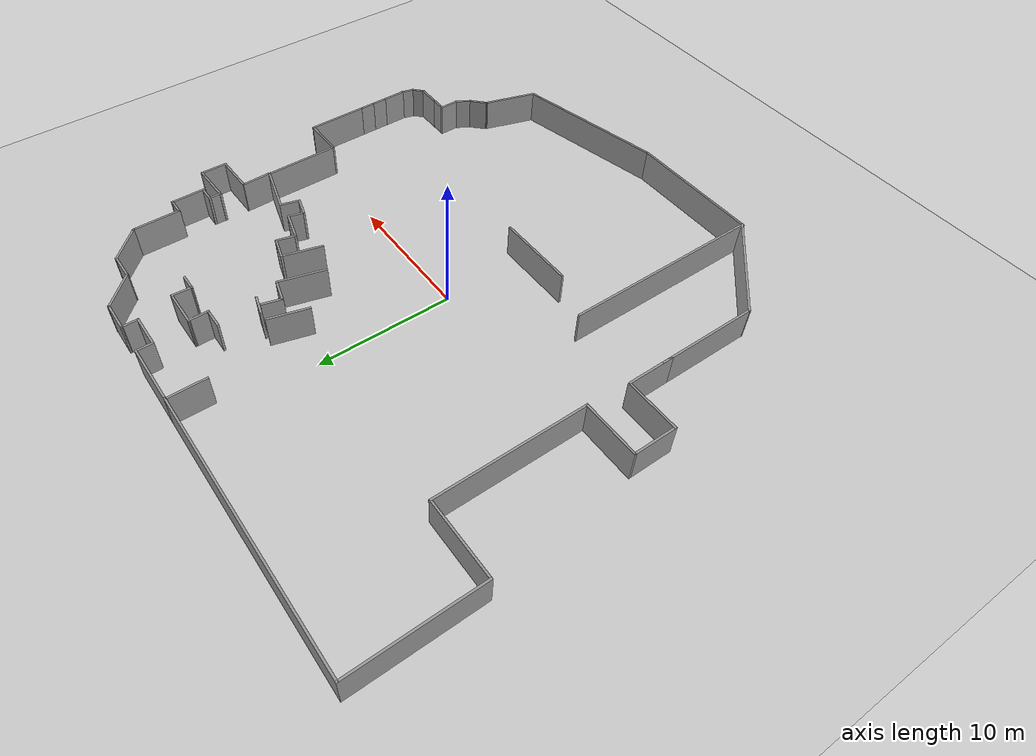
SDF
<sdf version="1.6">
 <world name="default">
  <model name="ground_plane">
   <static>1</static>
   <link name="link">
    <collision name="collision">
     <geometry><plane><normal>0 0 1</normal><size>100 100</size></plane></geometry>
     <surface>
      <contact><collide_bitmask>65535</collide_bitmask></contact>
      <friction><ode><mu>100</mu><mu2>50</mu2></ode></friction>
     </surface>
    </collision>
    <visual name="visual">
     <cast_shadows>0</cast_shadows>
     <geometry><plane><normal>0 0 1</normal><size>100 100</size></plane></geometry>
     <material>
      <script><uri>file://media/materials/scripts/gazebo.material</uri><name>Gazebo/Grey</name></script>
     </material>
    </visual>
   </link>
  </model>
  <model name="walls">
   <pose>-0.02861 -0.0174 0 0 -0 0</pose>
   <link name="Wall_0">
    <collision name="Wall_0_Collision">
     <geometry><box><size>20.15 0.15 2.5</size></box></geometry>
     <pose>0 0 1.25 0 -0 0</pose>
     <surface><contact><collide_bitmask>0x01</collide_bitmask></contact></surface>
    </collision>
    <visual name="Wall_0_Visual">
     <pose>0 0 1.25 0 -0 0</pose>
     <geometry><box><size>20.15 0.15 2.5</size></box></geometry>
     <material>
      <script><uri>file://media/materials/scripts/gazebo.material</uri><name>Gazebo/Grey</name></script>
      <ambient>1 1 1 1</ambient>
     </material>
     <meta><layer>0</layer></meta>
    </visual>
    <pose>-8.81505 19.397 0 0 -0 3.14159</pose>
   </link>
   <link name="Wall_11">
    <collision name="Wall_11_Collision">
     <geometry><box><size>1.25 0.15 2.5</size></box></geometry>
     <pose>0 0 1.25 0 -0 0</pose>
     <surface><contact><collide_bitmask>0x01</collide_bitmask></contact></surface>
    </collision>
    <visual name="Wall_11_Visual">
     <pose>0 0 1.25 0 -0 0</pose>
     <geometry><box><size>1.25 0.15 2.5</size></box></geometry>
     <material>
      <script><uri>file://media/materials/scripts/gazebo.material</uri><name>Gazebo/Grey</name></script>
      <ambient>1 1 1 1</ambient>
     </material>
     <meta><layer>0</layer></meta>
    </visual>
    <pose>5.53495 18.847 0 0 -0 -1.5708</pose>
   </link>
   <link name="Wall_12">
    <collision name="Wall_12_Collision">
     <geometry><box><size>2.5 0.15 2.5</size></box></geometry>
     <pose>0 0 1.25 0 -0 0</pose>
     <surface><contact><collide_bitmask>0x01</collide_bitmask></contact></surface>
    </collision>
    <visual name="Wall_12_Visual">
     <pose>0 0 1.25 0 -0 0</pose>
     <geometry><box><size>2.5 0.15 2.5</size></box></geometry>
     <material>
      <script><uri>file://media/materials/scripts/gazebo.material</uri><name>Gazebo/Grey</name></script>
      <ambient>1 1 1 1</ambient>
     </material>
     <meta><layer>0</layer></meta>
    </visual>
    <pose>6.70995 18.297 0 0 -0 0</pose>
   </link>
   <link name="Wall_13">
    <collision name="Wall_13_Collision">
     <geometry><box><size>1.25 0.15 2.5</size></box></geometry>
     <pose>0 0 1.25 0 -0 0</pose>
     <surface><contact><collide_bitmask>0x01</collide_bitmask></contact></surface>
    </collision>
    <visual name="Wall_13_Visual">
     <pose>0 0 1.25 0 -0 0</pose>
     <geometry><box><size>1.25 0.15 2.5</size></box></geometry>
     <material>
      <script><uri>file://media/materials/scripts/gazebo.material</uri><name>Gazebo/Grey</name></script>
      <ambient>1 1 1 1</ambient>
     </material>
     <meta><layer>0</layer></meta>
    </visual>
    <pose>7.88495 18.847 0 0 -0 1.5708</pose>
   </link>
   <link name="Wall_14">
    <collision name="Wall_14_Collision">
     <geometry><box><size>2.25 0.15 2.5</size></box></geometry>
     <pose>0 0 1.25 0 -0 0</pose>
     <surface><contact><collide_bitmask>0x01</collide_bitmask></contact></surface>
    </collision>
    <visual name="Wall_14_Visual">
     <pose>0 0 1.25 0 -0 0</pose>
     <geometry><box><size>2.25 0.15 2.5</size></box></geometry>
     <material>
      <script><uri>file://media/materials/scripts/gazebo.material</uri><name>Gazebo/Grey</name></script>
      <ambient>1 1 1 1</ambient>
     </material>
     <meta><layer>0</layer></meta>
    </visual>
    <pose>8.93495 19.397 0 0 -0 0</pose>
   </link>
   <link name="Wall_15">
    <collision name="Wall_15_Collision">
     <geometry><box><size>3 0.15 2.5</size></box></geometry>
     <pose>0 0 1.25 0 -0 0</pose>
     <surface><contact><collide_bitmask>0x01</collide_bitmask></contact></surface>
    </collision>
    <visual name="Wall_15_Visual">
     <pose>0 0 1.25 0 -0 0</pose>
     <geometry><box><size>3 0.15 2.5</size></box></geometry>
     <material>
      <script><uri>file://media/materials/scripts/gazebo.material</uri><name>Gazebo/Grey</name></script>
      <ambient>1 1 1 1</ambient>
     </material>
     <meta><layer>0</layer></meta>
    </visual>
    <pose>10.9926 18.3894 0 0 -0 -0.785398</pose>
   </link>
   <link name="Wall_16">
    <collision name="Wall_16_Collision">
     <geometry><box><size>2 0.15 2.5</size></box></geometry>
     <pose>0 0 1.25 0 -0 0</pose>
     <surface><contact><collide_bitmask>0x01</collide_bitmask></contact></surface>
    </collision>
    <visual name="Wall_16_Visual">
     <pose>0 0 1.25 0 -0 0</pose>
     <geometry><box><size>2 0.15 2.5</size></box></geometry>
     <material>
      <script><uri>file://media/materials/scripts/gazebo.material</uri><name>Gazebo/Grey</name></script>
      <ambient>1 1 1 1</ambient>
     </material>
     <meta><layer>0</layer></meta>
    </visual>
    <pose>12.9252 17.3817 0 0 -0 0</pose>
   </link>
   <link name="Wall_18">
    <collision name="Wall_18_Collision">
     <geometry><box><size>3 0.15 2.5</size></box></geometry>
     <pose>0 0 1.25 0 -0 0</pose>
     <surface><contact><collide_bitmask>0x01</collide_bitmask></contact></surface>
    </collision>
    <visual name="Wall_18_Visual">
     <pose>0 0 1.25 0 -0 0</pose>
     <geometry><box><size>3 0.15 2.5</size></box></geometry>
     <material>
      <script><uri>file://media/materials/scripts/gazebo.material</uri><name>Gazebo/Grey</name></script>
      <ambient>1 1 1 1</ambient>
     </material>
     <meta><layer>0</layer></meta>
    </visual>
    <pose>14.8578 16.3741 0 0 -0 -0.785398</pose>
   </link>
   <link name="Wall_19">
    <collision name="Wall_19_Collision">
     <geometry><box><size>3.5 0.15 2.5</size></box></geometry>
     <pose>0 0 1.25 0 -0 0</pose>
     <surface><contact><collide_bitmask>0x01</collide_bitmask></contact></surface>
    </collision>
    <visual name="Wall_19_Visual">
     <pose>0 0 1.25 0 -0 0</pose>
     <geometry><box><size>3.5 0.15 2.5</size></box></geometry>
     <material>
      <script><uri>file://media/materials/scripts/gazebo.material</uri><name>Gazebo/Grey</name></script>
      <ambient>1 1 1 1</ambient>
     </material>
     <meta><layer>0</layer></meta>
    </visual>
    <pose>15.8655 13.6915 0 0 -0 -1.5708</pose>
   </link>
   <link name="Wall_2">
    <collision name="Wall_2_Collision">
     <geometry><box><size>9.15 0.15 2.5</size></box></geometry>
     <pose>0 0 1.25 0 -0 0</pose>
     <surface><contact><collide_bitmask>0x01</collide_bitmask></contact></surface>
    </collision>
    <visual name="Wall_2_Visual">
     <pose>0 0 1.25 0 -0 0</pose>
     <geometry><box><size>9.15 0.15 2.5</size></box></geometry>
     <material>
      <script><uri>file://media/materials/scripts/gazebo.material</uri><name>Gazebo/Grey</name></script>
      <ambient>1 1 1 1</ambient>
     </material>
     <meta><layer>0</layer></meta>
    </visual>
    <pose>-18.8151 14.897 0 0 -0 -1.5708</pose>
   </link>
   <link name="Wall_20">
    <collision name="Wall_20_Collision">
     <geometry><box><size>1.25 0.15 2.5</size></box></geometry>
     <pose>0 0 1.25 0 -0 0</pose>
     <surface><contact><collide_bitmask>0x01</collide_bitmask></contact></surface>
    </collision>
    <visual name="Wall_20_Visual">
     <pose>0 0 1.25 0 -0 0</pose>
     <geometry><box><size>1.25 0.15 2.5</size></box></geometry>
     <material>
      <script><uri>file://media/materials/scripts/gazebo.material</uri><name>Gazebo/Grey</name></script>
      <ambient>1 1 1 1</ambient>
     </material>
     <meta><layer>0</layer></meta>
    </visual>
    <pose>16.4157 12.0162 0 0 -0 -0.000446</pose>
   </link>
   <link name="Wall_21">
    <collision name="Wall_21_Collision">
     <geometry><box><size>2.5 0.15 2.5</size></box></geometry>
     <pose>0 0 1.25 0 -0 0</pose>
     <surface><contact><collide_bitmask>0x01</collide_bitmask></contact></surface>
    </collision>
    <visual name="Wall_21_Visual">
     <pose>0 0 1.25 0 -0 0</pose>
     <geometry><box><size>2.5 0.15 2.5</size></box></geometry>
     <material>
      <script><uri>file://media/materials/scripts/gazebo.material</uri><name>Gazebo/Grey</name></script>
      <ambient>1 1 1 1</ambient>
     </material>
     <meta><layer>0</layer></meta>
    </visual>
    <pose>16.9659 10.841 0 0 -0 -1.5708</pose>
   </link>
   <link name="Wall_22">
    <collision name="Wall_22_Collision">
     <geometry><box><size>1.25 0.15 2.5</size></box></geometry>
     <pose>0 0 1.25 0 -0 0</pose>
     <surface><contact><collide_bitmask>0x01</collide_bitmask></contact></surface>
    </collision>
    <visual name="Wall_22_Visual">
     <pose>0 0 1.25 0 -0 0</pose>
     <geometry><box><size>1.25 0.15 2.5</size></box></geometry>
     <material>
      <script><uri>file://media/materials/scripts/gazebo.material</uri><name>Gazebo/Grey</name></script>
      <ambient>1 1 1 1</ambient>
     </material>
     <meta><layer>0</layer></meta>
    </visual>
    <pose>16.4159 9.66599 0 0 -0 3.14159</pose>
   </link>
   <link name="Wall_23">
    <collision name="Wall_23_Collision">
     <geometry><box><size>0.924056 0.15 2.5</size></box></geometry>
     <pose>0 0 1.25 0 -0 0</pose>
     <surface><contact><collide_bitmask>0x01</collide_bitmask></contact></surface>
    </collision>
    <visual name="Wall_23_Visual">
     <pose>0 0 1.25 0 -0 0</pose>
     <geometry><box><size>0.924056 0.15 2.5</size></box></geometry>
     <material>
      <script><uri>file://media/materials/scripts/gazebo.material</uri><name>Gazebo/Grey</name></script>
      <ambient>1 1 1 1</ambient>
     </material>
     <meta><layer>0</layer></meta>
    </visual>
    <pose>15.8657 9.27896 0 0 -0 -1.57143</pose>
   </link>
   <link name="Wall_24">
    <collision name="Wall_24_Collision">
     <geometry><box><size>3.04637 0.15 2.5</size></box></geometry>
     <pose>0 0 1.25 0 -0 0</pose>
     <surface><contact><collide_bitmask>0x01</collide_bitmask></contact></surface>
    </collision>
    <visual name="Wall_24_Visual">
     <pose>0 0 1.25 0 -0 0</pose>
     <geometry><box><size>3.04637 0.15 2.5</size></box></geometry>
     <material>
      <script><uri>file://media/materials/scripts/gazebo.material</uri><name>Gazebo/Grey</name></script>
      <ambient>1 1 1 1</ambient>
     </material>
     <meta><layer>0</layer></meta>
    </visual>
    <pose>17.268 8.89193 0 0 -0 0.031058</pose>
   </link>
   <link name="Wall_25">
    <collision name="Wall_25_Collision">
     <geometry><box><size>2 0.15 2.5</size></box></geometry>
     <pose>0 0 1.25 0 -0 0</pose>
     <surface><contact><collide_bitmask>0x01</collide_bitmask></contact></surface>
    </collision>
    <visual name="Wall_25_Visual">
     <pose>0 0 1.25 0 -0 0</pose>
     <geometry><box><size>2 0.15 2.5</size></box></geometry>
     <material>
      <script><uri>file://media/materials/scripts/gazebo.material</uri><name>Gazebo/Grey</name></script>
      <ambient>1 1 1 1</ambient>
     </material>
     <meta><layer>0</layer></meta>
    </visual>
    <pose>18.6977 8.01207 0 0 -0 -1.58997</pose>
   </link>
   <link name="Wall_26">
    <collision name="Wall_26_Collision">
     <geometry><box><size>3.01012 0.15 2.5</size></box></geometry>
     <pose>0 0 1.25 0 -0 0</pose>
     <surface><contact><collide_bitmask>0x01</collide_bitmask></contact></surface>
    </collision>
    <visual name="Wall_26_Visual">
     <pose>0 0 1.25 0 -0 0</pose>
     <geometry><box><size>3.01012 0.15 2.5</size></box></geometry>
     <material>
      <script><uri>file://media/materials/scripts/gazebo.material</uri><name>Gazebo/Grey</name></script>
      <ambient>1 1 1 1</ambient>
     </material>
     <meta><layer>0</layer></meta>
    </visual>
    <pose>17.2502 7.05734 0 0 -0 -3.12068</pose>
   </link>
   <link name="Wall_27">
    <collision name="Wall_27_Collision">
     <geometry><box><size>2.15523 0.15 2.5</size></box></geometry>
     <pose>0 0 1.25 0 -0 0</pose>
     <surface><contact><collide_bitmask>0x01</collide_bitmask></contact></surface>
    </collision>
    <visual name="Wall_27_Visual">
     <pose>0 0 1.25 0 -0 0</pose>
     <geometry><box><size>2.15523 0.15 2.5</size></box></geometry>
     <material>
      <script><uri>file://media/materials/scripts/gazebo.material</uri><name>Gazebo/Grey</name></script>
      <ambient>1 1 1 1</ambient>
     </material>
     <meta><layer>0</layer></meta>
    </visual>
    <pose>15.843 5.98011 0 0 -0 -1.54837</pose>
   </link>
   <link name="Wall_28">
    <collision name="Wall_28_Collision">
     <geometry><box><size>3.75 0.15 2.5</size></box></geometry>
     <pose>0 0 1.25 0 -0 0</pose>
     <surface><contact><collide_bitmask>0x01</collide_bitmask></contact></surface>
    </collision>
    <visual name="Wall_28_Visual">
     <pose>0 0 1.25 0 -0 0</pose>
     <geometry><box><size>3.75 0.15 2.5</size></box></geometry>
     <material>
      <script><uri>file://media/materials/scripts/gazebo.material</uri><name>Gazebo/Grey</name></script>
      <ambient>1 1 1 1</ambient>
     </material>
     <meta><layer>0</layer></meta>
    </visual>
    <pose>14.0818 5.39865 0 0 -0 2.87979</pose>
   </link>
   <link name="Wall_32">
    <collision name="Wall_32_Collision">
     <geometry><box><size>2.75 0.15 2.5</size></box></geometry>
     <pose>0 0 1.25 0 -0 0</pose>
     <surface><contact><collide_bitmask>0x01</collide_bitmask></contact></surface>
    </collision>
    <visual name="Wall_32_Visual">
     <pose>0 0 1.25 0 -0 0</pose>
     <geometry><box><size>2.75 0.15 2.5</size></box></geometry>
     <material>
      <script><uri>file://media/materials/scripts/gazebo.material</uri><name>Gazebo/Grey</name></script>
      <ambient>1 1 1 1</ambient>
     </material>
     <meta><layer>0</layer></meta>
    </visual>
    <pose>1.11456 18.0056 0 0 -0 -1.5708</pose>
   </link>
   <link name="Wall_34">
    <collision name="Wall_34_Collision">
     <geometry><box><size>1.5 0.15 2.5</size></box></geometry>
     <pose>0 0 1.25 0 -0 0</pose>
     <surface><contact><collide_bitmask>0x01</collide_bitmask></contact></surface>
    </collision>
    <visual name="Wall_34_Visual">
     <pose>0 0 1.25 0 -0 0</pose>
     <geometry><box><size>1.5 0.15 2.5</size></box></geometry>
     <material>
      <script><uri>file://media/materials/scripts/gazebo.material</uri><name>Gazebo/Grey</name></script>
      <ambient>1 1 1 1</ambient>
     </material>
     <meta><layer>0</layer></meta>
    </visual>
    <pose>12.1684 5.21253 0 0 -0 -1.8326</pose>
   </link>
   <link name="Wall_35">
    <collision name="Wall_35_Collision">
     <geometry><box><size>1.5 0.15 2.5</size></box></geometry>
     <pose>0 0 1.25 0 -0 0</pose>
     <surface><contact><collide_bitmask>0x01</collide_bitmask></contact></surface>
    </collision>
    <visual name="Wall_35_Visual">
     <pose>0 0 1.25 0 -0 0</pose>
     <geometry><box><size>1.5 0.15 2.5</size></box></geometry>
     <material>
      <script><uri>file://media/materials/scripts/gazebo.material</uri><name>Gazebo/Grey</name></script>
      <ambient>1 1 1 1</ambient>
     </material>
     <meta><layer>0</layer></meta>
    </visual>
    <pose>11.3417 4.73523 0 0 -0 2.87979</pose>
   </link>
   <link name="Wall_36">
    <collision name="Wall_36_Collision">
     <geometry><box><size>1.25 0.15 2.5</size></box></geometry>
     <pose>0 0 1.25 0 -0 0</pose>
     <surface><contact><collide_bitmask>0x01</collide_bitmask></contact></surface>
    </collision>
    <visual name="Wall_36_Visual">
     <pose>0 0 1.25 0 -0 0</pose>
     <geometry><box><size>1.25 0.15 2.5</size></box></geometry>
     <material>
      <script><uri>file://media/materials/scripts/gazebo.material</uri><name>Gazebo/Grey</name></script>
      <ambient>1 1 1 1</ambient>
     </material>
     <meta><layer>0</layer></meta>
    </visual>
    <pose>10.8321 5.44119 0 0 -0 1.309</pose>
   </link>
   <link name="Wall_37">
    <collision name="Wall_37_Collision">
     <geometry><box><size>2.25 0.15 2.5</size></box></geometry>
     <pose>0 0 1.25 0 -0 0</pose>
     <surface><contact><collide_bitmask>0x01</collide_bitmask></contact></surface>
    </collision>
    <visual name="Wall_37_Visual">
     <pose>0 0 1.25 0 -0 0</pose>
     <geometry><box><size>2.25 0.15 2.5</size></box></geometry>
     <material>
      <script><uri>file://media/materials/scripts/gazebo.material</uri><name>Gazebo/Grey</name></script>
      <ambient>1 1 1 1</ambient>
     </material>
     <meta><layer>0</layer></meta>
    </visual>
    <pose>9.96022 6.24421 0 0 -0 2.87979</pose>
   </link>
   <link name="Wall_38">
    <collision name="Wall_38_Collision">
     <geometry><box><size>1.5 0.15 2.5</size></box></geometry>
     <pose>0 0 1.25 0 -0 0</pose>
     <surface><contact><collide_bitmask>0x01</collide_bitmask></contact></surface>
    </collision>
    <visual name="Wall_38_Visual">
     <pose>0 0 1.25 0 -0 0</pose>
     <geometry><box><size>1.5 0.15 2.5</size></box></geometry>
     <material>
      <script><uri>file://media/materials/scripts/gazebo.material</uri><name>Gazebo/Grey</name></script>
      <ambient>1 1 1 1</ambient>
     </material>
     <meta><layer>0</layer></meta>
    </visual>
    <pose>9.12071 7.16797 0 0 -0 1.309</pose>
   </link>
   <link name="Wall_39">
    <collision name="Wall_39_Collision">
     <geometry><box><size>1.75 0.15 2.5</size></box></geometry>
     <pose>0 0 1.25 0 -0 0</pose>
     <surface><contact><collide_bitmask>0x01</collide_bitmask></contact></surface>
    </collision>
    <visual name="Wall_39_Visual">
     <pose>0 0 1.25 0 -0 0</pose>
     <geometry><box><size>1.75 0.15 2.5</size></box></geometry>
     <material>
      <script><uri>file://media/materials/scripts/gazebo.material</uri><name>Gazebo/Grey</name></script>
      <ambient>1 1 1 1</ambient>
     </material>
     <meta><layer>0</layer></meta>
    </visual>
    <pose>8.52267 8.02702 0 0 -0 2.87979</pose>
   </link>
   <link name="Wall_4">
    <collision name="Wall_4_Collision">
     <geometry><box><size>5.65 0.15 2.5</size></box></geometry>
     <pose>0 0 1.25 0 -0 0</pose>
     <surface><contact><collide_bitmask>0x01</collide_bitmask></contact></surface>
    </collision>
    <visual name="Wall_4_Visual">
     <pose>0 0 1.25 0 -0 0</pose>
     <geometry><box><size>5.65 0.15 2.5</size></box></geometry>
     <material>
      <script><uri>file://media/materials/scripts/gazebo.material</uri><name>Gazebo/Grey</name></script>
      <ambient>1 1 1 1</ambient>
     </material>
     <meta><layer>0</layer></meta>
    </visual>
    <pose>-16.0651 10.397 0 0 -0 0</pose>
   </link>
   <link name="Wall_40">
    <collision name="Wall_40_Collision">
     <geometry><box><size>3 0.15 2.5</size></box></geometry>
     <pose>0 0 1.25 0 -0 0</pose>
     <surface><contact><collide_bitmask>0x01</collide_bitmask></contact></surface>
    </collision>
    <visual name="Wall_40_Visual">
     <pose>0 0 1.25 0 -0 0</pose>
     <geometry><box><size>3 0.15 2.5</size></box></geometry>
     <material>
      <script><uri>file://media/materials/scripts/gazebo.material</uri><name>Gazebo/Grey</name></script>
      <ambient>1 1 1 1</ambient>
     </material>
     <meta><layer>0</layer></meta>
    </visual>
    <pose>7.38111 6.85764 0 0 -0 -1.8326</pose>
   </link>
   <link name="Wall_42">
    <collision name="Wall_42_Collision">
     <geometry><box><size>3.5 0.15 2.5</size></box></geometry>
     <pose>0 0 1.25 0 -0 0</pose>
     <surface><contact><collide_bitmask>0x01</collide_bitmask></contact></surface>
    </collision>
    <visual name="Wall_42_Visual">
     <pose>0 0 1.25 0 -0 0</pose>
     <geometry><box><size>3.5 0.15 2.5</size></box></geometry>
     <material>
      <script><uri>file://media/materials/scripts/gazebo.material</uri><name>Gazebo/Grey</name></script>
      <ambient>1 1 1 1</ambient>
     </material>
     <meta><layer>0</layer></meta>
    </visual>
    <pose>5.36205 7.99712 0 0 -0 1.309</pose>
   </link>
   <link name="Wall_43">
    <collision name="Wall_43_Collision">
     <geometry><box><size>1.75 0.15 2.5</size></box></geometry>
     <pose>0 0 1.25 0 -0 0</pose>
     <surface><contact><collide_bitmask>0x01</collide_bitmask></contact></surface>
    </collision>
    <visual name="Wall_43_Visual">
     <pose>0 0 1.25 0 -0 0</pose>
     <geometry><box><size>1.75 0.15 2.5</size></box></geometry>
     <material>
      <script><uri>file://media/materials/scripts/gazebo.material</uri><name>Gazebo/Grey</name></script>
      <ambient>1 1 1 1</ambient>
     </material>
     <meta><layer>0</layer></meta>
    </visual>
    <pose>5.02283 9.8221 0 0 -0 2.87979</pose>
   </link>
   <link name="Wall_44">
    <collision name="Wall_44_Collision">
     <geometry><box><size>1.5 0.15 2.5</size></box></geometry>
     <pose>0 0 1.25 0 -0 0</pose>
     <surface><contact><collide_bitmask>0x01</collide_bitmask></contact></surface>
    </collision>
    <visual name="Wall_44_Visual">
     <pose>0 0 1.25 0 -0 0</pose>
     <geometry><box><size>1.5 0.15 2.5</size></box></geometry>
     <material>
      <script><uri>file://media/materials/scripts/gazebo.material</uri><name>Gazebo/Grey</name></script>
      <ambient>1 1 1 1</ambient>
     </material>
     <meta><layer>0</layer></meta>
    </visual>
    <pose>4.42479 10.6812 0 0 -0 1.309</pose>
   </link>
   <link name="Wall_45">
    <collision name="Wall_45_Collision">
     <geometry><box><size>1.5 0.15 2.5</size></box></geometry>
     <pose>0 0 1.25 0 -0 0</pose>
     <surface><contact><collide_bitmask>0x01</collide_bitmask></contact></surface>
    </collision>
    <visual name="Wall_45_Visual">
     <pose>0 0 1.25 0 -0 0</pose>
     <geometry><box><size>1.5 0.15 2.5</size></box></geometry>
     <material>
      <script><uri>file://media/materials/scripts/gazebo.material</uri><name>Gazebo/Grey</name></script>
      <ambient>1 1 1 1</ambient>
     </material>
     <meta><layer>0</layer></meta>
    </visual>
    <pose>4.64749 11.5079 0 0 -0 2.87979</pose>
   </link>
   <link name="Wall_46">
    <collision name="Wall_46_Collision">
     <geometry><box><size>3 0.15 2.5</size></box></geometry>
     <pose>0 0 1.25 0 -0 0</pose>
     <surface><contact><collide_bitmask>0x01</collide_bitmask></contact></surface>
    </collision>
    <visual name="Wall_46_Visual">
     <pose>0 0 1.25 0 -0 0</pose>
     <geometry><box><size>3 0.15 2.5</size></box></geometry>
     <material>
      <script><uri>file://media/materials/scripts/gazebo.material</uri><name>Gazebo/Grey</name></script>
      <ambient>1 1 1 1</ambient>
     </material>
     <meta><layer>0</layer></meta>
    </visual>
    <pose>2.92668 10.3061 0 0 -0 -1.8326</pose>
   </link>
   <link name="Wall_49">
    <collision name="Wall_49_Collision">
     <geometry><box><size>5.5 0.15 2.5</size></box></geometry>
     <pose>0 0 1.25 0 -0 0</pose>
     <surface><contact><collide_bitmask>0x01</collide_bitmask></contact></surface>
    </collision>
    <visual name="Wall_49_Visual">
     <pose>0 0 1.25 0 -0 0</pose>
     <geometry><box><size>5.5 0.15 2.5</size></box></geometry>
     <material>
      <script><uri>file://media/materials/scripts/gazebo.material</uri><name>Gazebo/Grey</name></script>
      <ambient>1 1 1 1</ambient>
     </material>
     <meta><layer>0</layer></meta>
    </visual>
    <pose>15.8205 2.25778 0 0 -0 -1.5708</pose>
   </link>
   <link name="Wall_51">
    <collision name="Wall_51_Collision">
     <geometry><box><size>4.25 0.15 2.5</size></box></geometry>
     <pose>0 0 1.25 0 -0 0</pose>
     <surface><contact><collide_bitmask>0x01</collide_bitmask></contact></surface>
    </collision>
    <visual name="Wall_51_Visual">
     <pose>0 0 1.25 0 -0 0</pose>
     <geometry><box><size>4.25 0.15 2.5</size></box></geometry>
     <material>
      <script><uri>file://media/materials/scripts/gazebo.material</uri><name>Gazebo/Grey</name></script>
      <ambient>1 1 1 1</ambient>
     </material>
     <meta><layer>0</layer></meta>
    </visual>
    <pose>-15.3651 -0.603013 0 0 -0 3.14159</pose>
   </link>
   <link name="Wall_52">
    <collision name="Wall_52_Collision">
     <geometry><box><size>3.25 0.15 2.5</size></box></geometry>
     <pose>0 0 1.25 0 -0 0</pose>
     <surface><contact><collide_bitmask>0x01</collide_bitmask></contact></surface>
    </collision>
    <visual name="Wall_52_Visual">
     <pose>0 0 1.25 0 -0 0</pose>
     <geometry><box><size>3.25 0.15 2.5</size></box></geometry>
     <material>
      <script><uri>file://media/materials/scripts/gazebo.material</uri><name>Gazebo/Grey</name></script>
      <ambient>1 1 1 1</ambient>
     </material>
     <meta><layer>0</layer></meta>
    </visual>
    <pose>-17.4151 -2.15301 0 0 -0 -1.5708</pose>
   </link>
   <link name="Wall_53">
    <collision name="Wall_53_Collision">
     <geometry><box><size>4 0.15 2.5</size></box></geometry>
     <pose>0 0 1.25 0 -0 0</pose>
     <surface><contact><collide_bitmask>0x01</collide_bitmask></contact></surface>
    </collision>
    <visual name="Wall_53_Visual">
     <pose>0 0 1.25 0 -0 0</pose>
     <geometry><box><size>4 0.15 2.5</size></box></geometry>
     <material>
      <script><uri>file://media/materials/scripts/gazebo.material</uri><name>Gazebo/Grey</name></script>
      <ambient>1 1 1 1</ambient>
     </material>
     <meta><layer>0</layer></meta>
    </visual>
    <pose>-15.4901 -3.70301 0 0 -0 0</pose>
   </link>
   <link name="Wall_55">
    <collision name="Wall_55_Collision">
     <geometry><box><size>3.5 0.15 2.5</size></box></geometry>
     <pose>0 0 1.25 0 -0 0</pose>
     <surface><contact><collide_bitmask>0x01</collide_bitmask></contact></surface>
    </collision>
    <visual name="Wall_55_Visual">
     <pose>0 0 1.25 0 -0 0</pose>
     <geometry><box><size>3.5 0.15 2.5</size></box></geometry>
     <material>
      <script><uri>file://media/materials/scripts/gazebo.material</uri><name>Gazebo/Grey</name></script>
      <ambient>1 1 1 1</ambient>
     </material>
     <meta><layer>0</layer></meta>
    </visual>
    <pose>-13.5474 -5.43216 0 0 -0 -1.5708</pose>
   </link>
   <link name="Wall_56">
    <collision name="Wall_56_Collision">
     <geometry><box><size>7.5 0.15 2.5</size></box></geometry>
     <pose>0 0 1.25 0 -0 0</pose>
     <surface><contact><collide_bitmask>0x01</collide_bitmask></contact></surface>
    </collision>
    <visual name="Wall_56_Visual">
     <pose>0 0 1.25 0 -0 0</pose>
     <geometry><box><size>7.5 0.15 2.5</size></box></geometry>
     <material>
      <script><uri>file://media/materials/scripts/gazebo.material</uri><name>Gazebo/Grey</name></script>
      <ambient>1 1 1 1</ambient>
     </material>
     <meta><layer>0</layer></meta>
    </visual>
    <pose>-13.5474 -10.1822 0 0 -0 -1.5708</pose>
   </link>
   <link name="Wall_57">
    <collision name="Wall_57_Collision">
     <geometry><box><size>8.20684 0.15 2.5</size></box></geometry>
     <pose>0 0 1.25 0 -0 0</pose>
     <surface><contact><collide_bitmask>0x01</collide_bitmask></contact></surface>
    </collision>
    <visual name="Wall_57_Visual">
     <pose>0 0 1.25 0 -0 0</pose>
     <geometry><box><size>8.20684 0.15 2.5</size></box></geometry>
     <material>
      <script><uri>file://media/materials/scripts/gazebo.material</uri><name>Gazebo/Grey</name></script>
      <ambient>1 1 1 1</ambient>
     </material>
     <meta><layer>0</layer></meta>
    </visual>
    <pose>-10.6224 -16.6271 0 0 -0 -0.758176</pose>
   </link>
   <link name="Wall_58">
    <collision name="Wall_58_Collision">
     <geometry><box><size>14.7899 0.15 2.5</size></box></geometry>
     <pose>0 0 1.25 0 -0 0</pose>
     <surface><contact><collide_bitmask>0x01</collide_bitmask></contact></surface>
    </collision>
    <visual name="Wall_58_Visual">
     <pose>0 0 1.25 0 -0 0</pose>
     <geometry><box><size>14.7899 0.15 2.5</size></box></geometry>
     <material>
      <script><uri>file://media/materials/scripts/gazebo.material</uri><name>Gazebo/Grey</name></script>
      <ambient>1 1 1 1</ambient>
     </material>
     <meta><layer>0</layer></meta>
    </visual>
    <pose>-7.69736 -12.0771 0 0 -0 1.5708</pose>
   </link>
   <link name="Wall_6">
    <collision name="Wall_6_Collision">
     <geometry><box><size>11.15 0.15 2.5</size></box></geometry>
     <pose>0 0 1.25 0 -0 0</pose>
     <surface><contact><collide_bitmask>0x01</collide_bitmask></contact></surface>
    </collision>
    <visual name="Wall_6_Visual">
     <pose>0 0 1.25 0 -0 0</pose>
     <geometry><box><size>11.15 0.15 2.5</size></box></geometry>
     <material>
      <script><uri>file://media/materials/scripts/gazebo.material</uri><name>Gazebo/Grey</name></script>
      <ambient>1 1 1 1</ambient>
     </material>
     <meta><layer>0</layer></meta>
    </visual>
    <pose>-13.3151 4.89699 0 0 -0 -1.5708</pose>
   </link>
   <link name="Wall_60">
    <collision name="Wall_60_Collision">
     <geometry><box><size>5.75 0.15 2.5</size></box></geometry>
     <pose>0 0 1.25 0 -0 0</pose>
     <surface><contact><collide_bitmask>0x01</collide_bitmask></contact></surface>
    </collision>
    <visual name="Wall_60_Visual">
     <pose>0 0 1.25 0 -0 0</pose>
     <geometry><box><size>5.75 0.15 2.5</size></box></geometry>
     <material>
      <script><uri>file://media/materials/scripts/gazebo.material</uri><name>Gazebo/Grey</name></script>
      <ambient>1 1 1 1</ambient>
     </material>
     <meta><layer>0</layer></meta>
    </visual>
    <pose>-1.597 -6.03066 0 0 -0 0</pose>
   </link>
   <link name="Wall_62">
    <collision name="Wall_62_Collision">
     <geometry><box><size>9.75 0.15 2.5</size></box></geometry>
     <pose>0 0 1.25 0 -0 0</pose>
     <surface><contact><collide_bitmask>0x01</collide_bitmask></contact></surface>
    </collision>
    <visual name="Wall_62_Visual">
     <pose>0 0 1.25 0 -0 0</pose>
     <geometry><box><size>9.75 0.15 2.5</size></box></geometry>
     <material>
      <script><uri>file://media/materials/scripts/gazebo.material</uri><name>Gazebo/Grey</name></script>
      <ambient>1 1 1 1</ambient>
     </material>
     <meta><layer>0</layer></meta>
    </visual>
    <pose>-2.96575 -19.397 0 0 -0 0</pose>
   </link>
   <link name="Wall_64">
    <collision name="Wall_64_Collision">
     <geometry><box><size>11.191 0.15 2.5</size></box></geometry>
     <pose>0 0 1.25 0 -0 0</pose>
     <surface><contact><collide_bitmask>0x01</collide_bitmask></contact></surface>
    </collision>
    <visual name="Wall_64_Visual">
     <pose>0 0 1.25 0 -0 0</pose>
     <geometry><box><size>11.191 0.15 2.5</size></box></geometry>
     <material>
      <script><uri>file://media/materials/scripts/gazebo.material</uri><name>Gazebo/Grey</name></script>
      <ambient>1 1 1 1</ambient>
     </material>
     <meta><layer>0</layer></meta>
    </visual>
    <pose>7.22297 -18.1981 0 0 -0 0.21892</pose>
   </link>
   <link name="Wall_65">
    <collision name="Wall_65_Collision">
     <geometry><box><size>4.07583 0.15 2.5</size></box></geometry>
     <pose>0 0 1.25 0 -0 0</pose>
     <surface><contact><collide_bitmask>0x01</collide_bitmask></contact></surface>
    </collision>
    <visual name="Wall_65_Visual">
     <pose>0 0 1.25 0 -0 0</pose>
     <geometry><box><size>4.07583 0.15 2.5</size></box></geometry>
     <material>
      <script><uri>file://media/materials/scripts/gazebo.material</uri><name>Gazebo/Grey</name></script>
      <ambient>1 1 1 1</ambient>
     </material>
     <meta><layer>0</layer></meta>
    </visual>
    <pose>13.1921 -15.1241 0 0 -0 1.27061</pose>
   </link>
   <link name="Wall_66">
    <collision name="Wall_66_Collision">
     <geometry><box><size>1.5 0.15 2.5</size></box></geometry>
     <pose>0 0 1.25 0 -0 0</pose>
     <surface><contact><collide_bitmask>0x01</collide_bitmask></contact></surface>
    </collision>
    <visual name="Wall_66_Visual">
     <pose>0 0 1.25 0 -0 0</pose>
     <geometry><box><size>1.5 0.15 2.5</size></box></geometry>
     <material>
      <script><uri>file://media/materials/scripts/gazebo.material</uri><name>Gazebo/Grey</name></script>
      <ambient>1 1 1 1</ambient>
     </material>
     <meta><layer>0</layer></meta>
    </visual>
    <pose>14.2499 -12.7716 0 0 -0 0.785398</pose>
   </link>
   <link name="Wall_67">
    <collision name="Wall_67_Collision">
     <geometry><box><size>1.25 0.15 2.5</size></box></geometry>
     <pose>0 0 1.25 0 -0 0</pose>
     <surface><contact><collide_bitmask>0x01</collide_bitmask></contact></surface>
    </collision>
    <visual name="Wall_67_Visual">
     <pose>0 0 1.25 0 -0 0</pose>
     <geometry><box><size>1.25 0.15 2.5</size></box></geometry>
     <material>
      <script><uri>file://media/materials/scripts/gazebo.material</uri><name>Gazebo/Grey</name></script>
      <ambient>1 1 1 1</ambient>
     </material>
     <meta><layer>0</layer></meta>
    </visual>
    <pose>15.0022 -11.818 0 0 -0 1.0472</pose>
   </link>
   <link name="Wall_68">
    <collision name="Wall_68_Collision">
     <geometry><box><size>1.5 0.15 2.5</size></box></geometry>
     <pose>0 0 1.25 0 -0 0</pose>
     <surface><contact><collide_bitmask>0x01</collide_bitmask></contact></surface>
    </collision>
    <visual name="Wall_68_Visual">
     <pose>0 0 1.25 0 -0 0</pose>
     <geometry><box><size>1.5 0.15 2.5</size></box></geometry>
     <material>
      <script><uri>file://media/materials/scripts/gazebo.material</uri><name>Gazebo/Grey</name></script>
      <ambient>1 1 1 1</ambient>
     </material>
     <meta><layer>0</layer></meta>
    </visual>
    <pose>15.2772 -10.6667 0 0 -0 1.5708</pose>
   </link>
   <link name="Wall_69">
    <collision name="Wall_69_Collision">
     <geometry><box><size>1.25 0.15 2.5</size></box></geometry>
     <pose>0 0 1.25 0 -0 0</pose>
     <surface><contact><collide_bitmask>0x01</collide_bitmask></contact></surface>
    </collision>
    <visual name="Wall_69_Visual">
     <pose>0 0 1.25 0 -0 0</pose>
     <geometry><box><size>1.25 0.15 2.5</size></box></geometry>
     <material>
      <script><uri>file://media/materials/scripts/gazebo.material</uri><name>Gazebo/Grey</name></script>
      <ambient>1 1 1 1</ambient>
     </material>
     <meta><layer>0</layer></meta>
    </visual>
    <pose>15.8272 -9.99171 0 0 -0 0</pose>
   </link>
   <link name="Wall_70">
    <collision name="Wall_70_Collision">
     <geometry><box><size>1.75 0.15 2.5</size></box></geometry>
     <pose>0 0 1.25 0 -0 0</pose>
     <surface><contact><collide_bitmask>0x01</collide_bitmask></contact></surface>
    </collision>
    <visual name="Wall_70_Visual">
     <pose>0 0 1.25 0 -0 0</pose>
     <geometry><box><size>1.75 0.15 2.5</size></box></geometry>
     <material>
      <script><uri>file://media/materials/scripts/gazebo.material</uri><name>Gazebo/Grey</name></script>
      <ambient>1 1 1 1</ambient>
     </material>
     <meta><layer>0</layer></meta>
    </visual>
    <pose>17.1772 -9.99171 0 0 -0 0</pose>
   </link>
   <link name="Wall_71">
    <collision name="Wall_71_Collision">
     <geometry><box><size>1 0.15 2.5</size></box></geometry>
     <pose>0 0 1.25 0 -0 0</pose>
     <surface><contact><collide_bitmask>0x01</collide_bitmask></contact></surface>
    </collision>
    <visual name="Wall_71_Visual">
     <pose>0 0 1.25 0 -0 0</pose>
     <geometry><box><size>1 0.15 2.5</size></box></geometry>
     <material>
      <script><uri>file://media/materials/scripts/gazebo.material</uri><name>Gazebo/Grey</name></script>
      <ambient>1 1 1 1</ambient>
     </material>
     <meta><layer>0</layer></meta>
    </visual>
    <pose>18.2777 -9.69119 0 0 -0 0.785398</pose>
   </link>
   <link name="Wall_72">
    <collision name="Wall_72_Collision">
     <geometry><box><size>1 0.15 2.5</size></box></geometry>
     <pose>0 0 1.25 0 -0 0</pose>
     <surface><contact><collide_bitmask>0x01</collide_bitmask></contact></surface>
    </collision>
    <visual name="Wall_72_Visual">
     <pose>0 0 1.25 0 -0 0</pose>
     <geometry><box><size>1 0.15 2.5</size></box></geometry>
     <material>
      <script><uri>file://media/materials/scripts/gazebo.material</uri><name>Gazebo/Grey</name></script>
      <ambient>1 1 1 1</ambient>
     </material>
     <meta><layer>0</layer></meta>
    </visual>
    <pose>18.6882 -8.98015 0 0 -0 1.309</pose>
   </link>
   <link name="Wall_73">
    <collision name="Wall_73_Collision">
     <geometry><box><size>1.75 0.15 2.5</size></box></geometry>
     <pose>0 0 1.25 0 -0 0</pose>
     <surface><contact><collide_bitmask>0x01</collide_bitmask></contact></surface>
    </collision>
    <visual name="Wall_73_Visual">
     <pose>0 0 1.25 0 -0 0</pose>
     <geometry><box><size>1.75 0.15 2.5</size></box></geometry>
     <material>
      <script><uri>file://media/materials/scripts/gazebo.material</uri><name>Gazebo/Grey</name></script>
      <ambient>1 1 1 1</ambient>
     </material>
     <meta><layer>0</layer></meta>
    </visual>
    <pose>18.7982 -7.76963 0 0 -0 1.5708</pose>
   </link>
   <link name="Wall_74">
    <collision name="Wall_74_Collision">
     <geometry><box><size>1.25 0.15 2.5</size></box></geometry>
     <pose>0 0 1.25 0 -0 0</pose>
     <surface><contact><collide_bitmask>0x01</collide_bitmask></contact></surface>
    </collision>
    <visual name="Wall_74_Visual">
     <pose>0 0 1.25 0 -0 0</pose>
     <geometry><box><size>1.25 0.15 2.5</size></box></geometry>
     <material>
      <script><uri>file://media/materials/scripts/gazebo.material</uri><name>Gazebo/Grey</name></script>
      <ambient>1 1 1 1</ambient>
     </material>
     <meta><layer>0</layer></meta>
    </visual>
    <pose>18.7982 -6.41963 0 0 -0 1.5708</pose>
   </link>
   <link name="Wall_75">
    <collision name="Wall_75_Collision">
     <geometry><box><size>1.25 0.15 2.5</size></box></geometry>
     <pose>0 0 1.25 0 -0 0</pose>
     <surface><contact><collide_bitmask>0x01</collide_bitmask></contact></surface>
    </collision>
    <visual name="Wall_75_Visual">
     <pose>0 0 1.25 0 -0 0</pose>
     <geometry><box><size>1.25 0.15 2.5</size></box></geometry>
     <material>
      <script><uri>file://media/materials/scripts/gazebo.material</uri><name>Gazebo/Grey</name></script>
      <ambient>1 1 1 1</ambient>
     </material>
     <meta><layer>0</layer></meta>
    </visual>
    <pose>18.7982 -5.31963 0 0 -0 1.5708</pose>
   </link>
   <link name="Wall_76">
    <collision name="Wall_76_Collision">
     <geometry><box><size>4.5 0.15 2.5</size></box></geometry>
     <pose>0 0 1.25 0 -0 0</pose>
     <surface><contact><collide_bitmask>0x01</collide_bitmask></contact></surface>
    </collision>
    <visual name="Wall_76_Visual">
     <pose>0 0 1.25 0 -0 0</pose>
     <geometry><box><size>4.5 0.15 2.5</size></box></geometry>
     <material>
      <script><uri>file://media/materials/scripts/gazebo.material</uri><name>Gazebo/Grey</name></script>
      <ambient>1 1 1 1</ambient>
     </material>
     <meta><layer>0</layer></meta>
    </visual>
    <pose>18.7982 -2.59463 0 0 -0 1.5708</pose>
   </link>
   <link name="Wall_77">
    <collision name="Wall_77_Collision">
     <geometry><box><size>3.12771 0.15 2.5</size></box></geometry>
     <pose>0 0 1.25 0 -0 0</pose>
     <surface><contact><collide_bitmask>0x01</collide_bitmask></contact></surface>
    </collision>
    <visual name="Wall_77_Visual">
     <pose>0 0 1.25 0 -0 0</pose>
     <geometry><box><size>3.12771 0.15 2.5</size></box></geometry>
     <material>
      <script><uri>file://media/materials/scripts/gazebo.material</uri><name>Gazebo/Grey</name></script>
      <ambient>1 1 1 1</ambient>
     </material>
     <meta><layer>0</layer></meta>
    </visual>
    <pose>17.3093 -0.418427 0 0 -0 3.14078</pose>
   </link>
   <link name="Wall_8">
    <collision name="Wall_8_Collision">
     <geometry><box><size>4.5 0.15 2.5</size></box></geometry>
     <pose>0 0 1.25 0 -0 0</pose>
     <surface><contact><collide_bitmask>0x01</collide_bitmask></contact></surface>
    </collision>
    <visual name="Wall_8_Visual">
     <pose>0 0 1.25 0 -0 0</pose>
     <geometry><box><size>4.5 0.15 2.5</size></box></geometry>
     <material>
      <script><uri>file://media/materials/scripts/gazebo.material</uri><name>Gazebo/Grey</name></script>
      <ambient>1 1 1 1</ambient>
     </material>
     <meta><layer>0</layer></meta>
    </visual>
    <pose>3.35995 19.397 0 0 -0 0</pose>
   </link>
   <link name="Wall_95">
    <collision name="Wall_95_Collision">
     <geometry><box><size>1.5 0.15 2.5</size></box></geometry>
     <pose>0 0 1.25 0 -0 0</pose>
     <surface><contact><collide_bitmask>0x01</collide_bitmask></contact></surface>
    </collision>
    <visual name="Wall_95_Visual">
     <pose>0 0 1.25 0 -0 0</pose>
     <geometry><box><size>1.5 0.15 2.5</size></box></geometry>
     <material>
      <script><uri>file://media/materials/scripts/gazebo.material</uri><name>Gazebo/Grey</name></script>
      <ambient>1 1 1 1</ambient>
     </material>
     <meta><layer>0</layer></meta>
    </visual>
    <pose>5.30785 14.377 0 0 -0 0</pose>
   </link>
   <link name="Wall_96">
    <collision name="Wall_96_Collision">
     <geometry><box><size>1.5 0.15 2.5</size></box></geometry>
     <pose>0 0 1.25 0 -0 0</pose>
     <surface><contact><collide_bitmask>0x01</collide_bitmask></contact></surface>
    </collision>
    <visual name="Wall_96_Visual">
     <pose>0 0 1.25 0 -0 0</pose>
     <geometry><box><size>1.5 0.15 2.5</size></box></geometry>
     <material>
      <script><uri>file://media/materials/scripts/gazebo.material</uri><name>Gazebo/Grey</name></script>
      <ambient>1 1 1 1</ambient>
     </material>
     <meta><layer>0</layer></meta>
    </visual>
    <pose>5.98196 15.052 0 0 -0 1.57212</pose>
   </link>
   <link name="Wall_97">
    <collision name="Wall_97_Collision">
     <geometry><box><size>2.75 0.15 2.5</size></box></geometry>
     <pose>0 0 1.25 0 -0 0</pose>
     <surface><contact><collide_bitmask>0x01</collide_bitmask></contact></surface>
    </collision>
    <visual name="Wall_97_Visual">
     <pose>0 0 1.25 0 -0 0</pose>
     <geometry><box><size>2.75 0.15 2.5</size></box></geometry>
     <material>
      <script><uri>file://media/materials/scripts/gazebo.material</uri><name>Gazebo/Grey</name></script>
      <ambient>1 1 1 1</ambient>
     </material>
     <meta><layer>0</layer></meta>
    </visual>
    <pose>7.28107 15.727 0 0 -0 0</pose>
   </link>
   <link name="Wall_98">
    <collision name="Wall_98_Collision">
     <geometry><box><size>1.5 0.15 2.5</size></box></geometry>
     <pose>0 0 1.25 0 -0 0</pose>
     <surface><contact><collide_bitmask>0x01</collide_bitmask></contact></surface>
    </collision>
    <visual name="Wall_98_Visual">
     <pose>0 0 1.25 0 -0 0</pose>
     <geometry><box><size>1.5 0.15 2.5</size></box></geometry>
     <material>
      <script><uri>file://media/materials/scripts/gazebo.material</uri><name>Gazebo/Grey</name></script>
      <ambient>1 1 1 1</ambient>
     </material>
     <meta><layer>0</layer></meta>
    </visual>
    <pose>8.54857 15.0528 0 0 -0 -1.61897</pose>
   </link>
   <link name="Wall_99">
    <collision name="Wall_99_Collision">
     <geometry><box><size>1.25 0.15 2.5</size></box></geometry>
     <pose>0 0 1.25 0 -0 0</pose>
     <surface><contact><collide_bitmask>0x01</collide_bitmask></contact></surface>
    </collision>
    <visual name="Wall_99_Visual">
     <pose>0 0 1.25 0 -0 0</pose>
     <geometry><box><size>1.25 0.15 2.5</size></box></geometry>
     <material>
      <script><uri>file://media/materials/scripts/gazebo.material</uri><name>Gazebo/Grey</name></script>
      <ambient>1 1 1 1</ambient>
     </material>
     <meta><layer>0</layer></meta>
    </visual>
    <pose>9.06606 14.3786 0 0 -0 0</pose>
   </link>
   <static>1</static>
  </model>
 </world>
</sdf>
